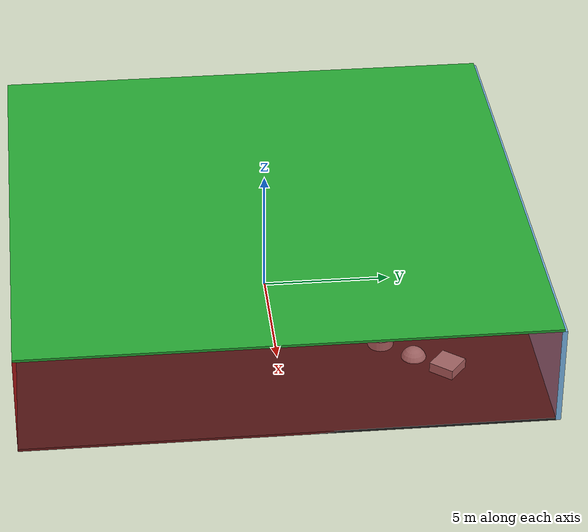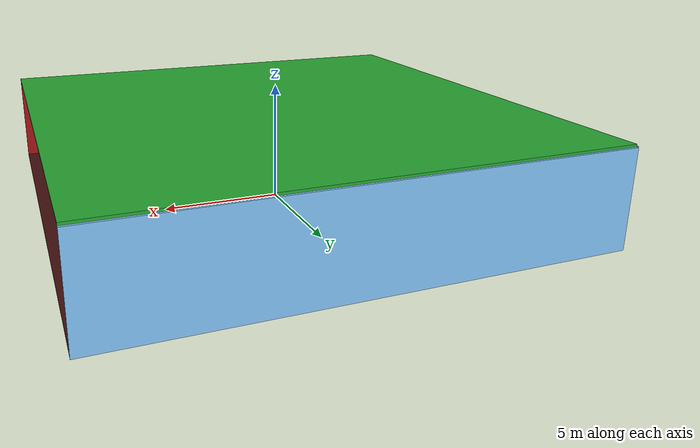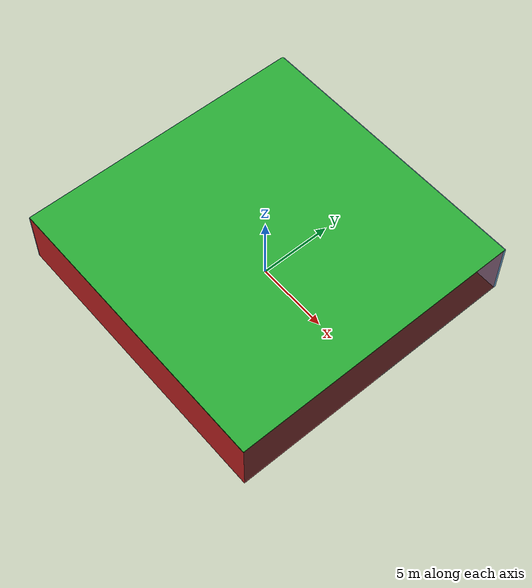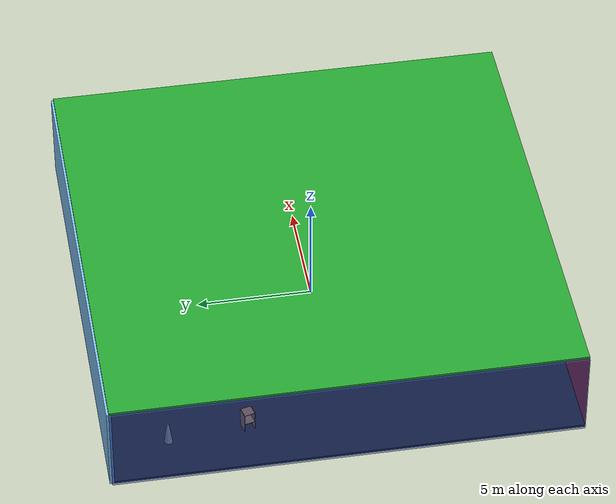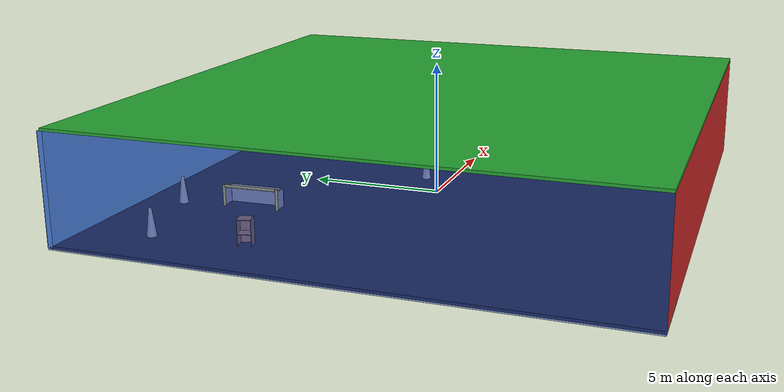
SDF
<sdf version="1.4">
 <world name="default">
  <physics type="ode">
   <max_step_size>0.001</max_step_size>
   <real_time_factor>1</real_time_factor>
   <real_time_update_rate>1000</real_time_update_rate>
   <gravity>0 0 -9.8</gravity>
  </physics>
  <scene><ambient>0.4 0.4 0.4 1</ambient><background>0.7 0.7 0.7 1</background><shadows>1</shadows></scene>
  <model name="Surrounding">
   <static>1</static>
   <link name="Ceiling">
    <collision name="Ceiling_Collision"><geometry><box><size>20 20 0.1</size></box></geometry></collision>
    <visual name="Ceiling_Visual">
     <geometry><box><size>20 20 0.1</size></box></geometry>
     <material>
      <script><uri>file://media/materials/scripts/gazebo.material</uri><name>Gazebo/GreenGlow</name></script>
     </material>
    </visual>
    <pose>0 0 4.05 0 0 0</pose>
   </link>
   <link name="Wall_South">
    <collision name="Wall_South_Collision">
     <geometry><box><size>20 0 4</size></box></geometry>
     <pose>0 0 2 0 -0 0</pose>
    </collision>
    <visual name="Wall_South_Visual">
     <pose>0 0 2 0 -0 0</pose>
     <geometry><box><size>20 0 4</size></box></geometry>
     <material>
      <script><uri>file://media/materials/scripts/gazebo.material</uri><name>Gazebo/RedGlow</name></script>
     </material>
    </visual>
    <velocity_decay><linear>0</linear><angular>0</angular></velocity_decay>
    <pose>0 -10 0 0 -0 0</pose>
   </link>
   <link name="Wall_East">
    <collision name="Wall_21_Collision">
     <geometry><box><size>20 0 4</size></box></geometry>
     <pose>0 0 2 0 -0 0</pose>
    </collision>
    <visual name="Wall_21_Visual">
     <pose>0 0 2 0 -0 0</pose>
     <geometry><box><size>20 0 4</size></box></geometry>
     <material>
      <script><uri>file://media/materials/scripts/gazebo.material</uri><name>Gazebo/RedTransparent</name></script>
     </material>
    </visual>
    <velocity_decay><linear>0</linear><angular>0</angular></velocity_decay>
    <pose>10 0 0 0 -0 1.5708</pose>
   </link>
   <link name="Wall_North">
    <collision name="Wall_22_Collision">
     <geometry><box><size>20 0.2 4</size></box></geometry>
     <pose>0 0 2 0 -0 0</pose>
    </collision>
    <visual name="Wall_22_Visual">
     <pose>0 0 2 0 -0 0</pose>
     <geometry><box><size>20 0.2 4</size></box></geometry>
     <material>
      <script><uri>file://media/materials/scripts/gazebo.material</uri><name>Gazebo/SkyBlue</name></script>
     </material>
    </visual>
    <velocity_decay><linear>0</linear><angular>0</angular></velocity_decay>
    <pose>0 10 0 0 -0 0</pose>
   </link>
   <link name="Wall_West">
    <collision name="Wall_23_Collision">
     <geometry><box><size>20 0.2 4</size></box></geometry>
     <pose>0 0 2 0 -0 0</pose>
    </collision>
    <visual name="Wall_23_Visual">
     <pose>0 0 2 0 -0 0</pose>
     <geometry><box><size>20 0.2 4</size></box></geometry>
     <material>
      <script><uri>file://media/materials/scripts/gazebo.material</uri><name>Gazebo/BlueTransparent</name></script>
     </material>
    </visual>
    <velocity_decay><linear>0</linear><angular>0</angular></velocity_decay>
    <pose>-10 0 0 0 0 -1.5708</pose>
   </link>
   <link name="Ground_link">
    <collision name="collision">
     <pose>0 0 .05 0 -0 0</pose>
     <geometry><box><size>20 20 0.1</size></box></geometry>
    </collision>
    <visual name="visual">
     <pose>0 0 .05 0 -0 0</pose>
     <geometry><box><size>20 20 0.1</size></box></geometry>
     <material>
      <script><uri>file://media/materials/scripts/gazebo.material</uri><name>Gazebo/FlatBlack</name></script>
     </material>
    </visual>
   </link>
   <static>1</static>
  </model>
  <spherical_coordinates>
   <surface_model>EARTH_WGS84</surface_model>
   <latitude_deg>0</latitude_deg>
   <longitude_deg>0</longitude_deg>
   <elevation>0</elevation>
   <heading_deg>0</heading_deg>
  </spherical_coordinates>
  <light name="lightball_0" type="diffuse">
   <diffuse>0.8 0.8 0.8 1</diffuse>
   <specular>0.2 0.2 0.2 1</specular>
   <attenuation>
    <range>100</range>
    <constant>0.7</constant>
    <linear>0.01</linear>
    <quadratic>0.001</quadratic>
   </attenuation>
   <direction>-0.5 0.1 -0.9</direction>
   <pose>-8.72466909802 -1.01356540672 2.9802159721 0 0 0</pose>
  </light>
  <light name="lightball_1" type="diffuse">
   <diffuse>0.8 0.8 0.8 1</diffuse>
   <specular>0.2 0.2 0.2 1</specular>
   <attenuation>
    <range>100</range>
    <constant>0.7</constant>
    <linear>0.01</linear>
    <quadratic>0.001</quadratic>
   </attenuation>
   <direction>-0.5 0.1 -0.9</direction>
   <pose>5.41707465463 -2.99208457097 2.48107268155 0 0 0</pose>
  </light>
  <light name="lightball_2" type="diffuse">
   <diffuse>0.8 0.8 0.8 1</diffuse>
   <specular>0.2 0.2 0.2 1</specular>
   <attenuation>
    <range>100</range>
    <constant>0.7</constant>
    <linear>0.01</linear>
    <quadratic>0.001</quadratic>
   </attenuation>
   <direction>-0.5 0.1 -0.9</direction>
   <pose>-9.04754403407 1.49639384517 3.2552461914 0 0 0</pose>
  </light>
  <light name="lightball_3" type="diffuse">
   <diffuse>0.8 0.8 0.8 1</diffuse>
   <specular>0.2 0.2 0.2 1</specular>
   <attenuation>
    <range>100</range>
    <constant>0.7</constant>
    <linear>0.01</linear>
    <quadratic>0.001</quadratic>
   </attenuation>
   <direction>-0.5 0.1 -0.9</direction>
   <pose>1.83734566447 -3.61755790274 2.7854886572 0 0 0</pose>
  </light>
  <light name="lightball_4" type="diffuse">
   <diffuse>0.8 0.8 0.8 1</diffuse>
   <specular>0.2 0.2 0.2 1</specular>
   <attenuation>
    <range>100</range>
    <constant>0.7</constant>
    <linear>0.01</linear>
    <quadratic>0.001</quadratic>
   </attenuation>
   <direction>-0.5 0.1 -0.9</direction>
   <pose>-6.61725762006 5.12258373312 1.35293393653 0 0 0</pose>
  </light>
  <include><uri>model://cabinet</uri><pose>-7.76982625838 3.97972277935 0 0 0 0.259555456043</pose></include>
  <include>
   <uri>model://construction_cone</uri>
   <pose>-8.07490308733 7.39019574553 0 0 0 1.73705333743</pose>
  </include>
  <include>
   <uri>model://robocup_3Dsim_goal</uri>
   <pose>-4.3426716013 5.68772347908 0 0 0 0.0315388470533</pose>
  </include>
  <include>
   <uri>model://construction_cone</uri>
   <pose>-4.54764872743 8.35553646853 0 0 0 1.2015756521</pose>
  </include>
  <include>
   <uri>model://construction_cone</uri>
   <pose>1.31716823285 0.892435547546 0 0 0 1.79534934271</pose>
  </include>
  <include>
   <uri>model://robocup_3Dsim_goal</uri>
   <pose>3.48102658055 1.52870939959 0 0 0 0.240545969799</pose>
  </include>
  <include>
   <uri>model://textured_shapes</uri>
   <pose>5.64475873473 5.21325382505 0 0 0 2.45656945472</pose>
  </include>
 </world>
</sdf>

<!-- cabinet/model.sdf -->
<sdf version="1.5">
  <model name="cabinet">
    <static>true</static>
    <link name="cabinet_bottom_plate">
      <inertial>
        <pose>0 0 -1 0 0 0</pose>
        <inertia>
          <ixx>2.050000</ixx>
          <ixy>0</ixy>
          <ixz>0</ixz>
          <iyy>2.050000</iyy>
          <iyz>0</iyz>
          <izz>2.050000</izz>
        </inertia>
        <mass>25.000000</mass>
      </inertial>
      <collision name="cabinet_bottom_plate_geom">
        <pose>0 0 0.010000 0 0 0</pose>
        <geometry>
          <box>
            <size>0.450000 0.450000 0.020000</size>
          </box>
        </geometry>
      </collision>
      <visual name="cabinet_bottom_plate_geom_visual">
        <pose>0 0 0.010000 0 0 0</pose>
        <geometry>
          <box>
            <size>0.450000 0.450000 0.020000</size>
          </box>
        </geometry>
        <material>
          <script>
            <uri>model://media/materials/scripts/gazebo.material</uri>
            <name>Gazebo/Wood</name>
          </script>
        </material>
      </visual>
      <collision name="cabinet_bottom_plate_geom_cabinet_back_plate">
        <pose>0.235000 0 0.510000 0 0 0</pose>
        <geometry>
          <box>
            <size>0.020000 0.450000 1.020000</size>
          </box>
        </geometry>
      </collision>
      <visual name="cabinet_bottom_plate_geom_cabinet_back_plate_visual">
        <pose>0.235000 0 0.510000 0 0 0</pose>
        <geometry>
          <box>
            <size>0.020000 0.450000 1.020000</size>
          </box>
        </geometry>
        <material>
          <script>
            <uri>model://media/materials/scripts/gazebo.material</uri>
            <name>Gazebo/Wood</name>
          </script>
        </material>
      </visual>
      <collision name="cabinet_bottom_plate_geom_cabinet_left_plate">
        <pose>0 0.235000 0.510000 0 0 0</pose>
        <geometry>
          <box>
            <size>0.450000 0.020000 1.020000</size>
          </box>
        </geometry>
      </collision>
      <visual name="cabinet_bottom_plate_geom_cabinet_left_plate_visual">
        <pose>0 0.235000 0.510000 0 0 0</pose>
        <geometry>
          <box>
            <size>0.450000 0.020000 1.020000</size>
          </box>
        </geometry>
        <material>
          <script>
            <uri>model://media/materials/scripts/gazebo.material</uri>
            <name>Gazebo/Wood</name>
          </script>
        </material>
      </visual>
      <collision name="cabinet_bottom_plate_geom_cabinet_middle_plate">
        <pose>0 0 0.510000 0 0 0</pose>
        <geometry>
          <box>
            <size>0.450000 0.450000 0.020000</size>
          </box>
        </geometry>
      </collision>
      <visual name="cabinet_bottom_plate_geom_cabinet_middle_plate_visual">
        <pose>0 0 0.510000 0 0 0</pose>
        <geometry>
          <box>
            <size>0.450000 0.450000 0.020000</size>
          </box>
        </geometry>
        <material>
          <script>
            <uri>model://media/materials/scripts/gazebo.material</uri>
            <name>Gazebo/Wood</name>
          </script>
        </material>
      </visual>
      <collision name="cabinet_bottom_plate_geom_cabinet_right_plate">
        <pose>0 -0.235000 0.510000 0 0 0</pose>
        <geometry>
          <box>
            <size>0.450000 0.020000 1.020000</size>
          </box>
        </geometry>
      </collision>
      <visual name="cabinet_bottom_plate_geom_cabinet_right_plate_visual">
        <pose>0 -0.235000 0.510000 0 0 0</pose>
        <geometry>
          <box>
            <size>0.450000 0.020000 1.020000</size>
          </box>
        </geometry>
        <material>
          <script>
            <uri>model://media/materials/scripts/gazebo.material</uri>
            <name>Gazebo/Wood</name>
          </script>
        </material>
      </visual>
      <collision name="cabinet_bottom_plate_geom_cabinet_top_plate">
        <pose>0 0 1.010000 0 0 0</pose>
        <geometry>
          <box>
            <size>0.450000 0.450000 0.020000</size>
          </box>
        </geometry>
      </collision>
      <visual name="cabinet_bottom_plate_geom_cabinet_top_plate_visual">
        <pose>0 0 1.010000 0 0 0</pose>
        <geometry>
          <box>
            <size>0.450000 0.450000 0.020000</size>
          </box>
        </geometry>
        <material>
          <script>
            <uri>model://media/materials/scripts/gazebo.material</uri>
            <name>Gazebo/Wood</name>
          </script>
        </material>
      </visual>
    </link>
  </model>
</sdf>

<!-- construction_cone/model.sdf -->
<sdf version="1.5">
  <model name="Construction Cone">
    <link name="link">
      <collision name="collision">
        <geometry>
          <mesh>
            <scale>10 10 10</scale>
            <uri>file://isr-testbed/construction_cone/meshes/construction_cone.dae</uri>
          </mesh>
        </geometry>
      </collision>
      <visual name="visual">
        <geometry>
          <mesh>
            <scale>10 10 10</scale>
            <uri>file://isr-testbed/construction_cone/meshes/construction_cone.dae</uri>
          </mesh>
        </geometry>
      </visual>
    </link>
  </model>
</sdf>

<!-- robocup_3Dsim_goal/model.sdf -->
<sdf version="1.5">
  <model name="robocup_3d_goal">
    <static>true</static>
    <link name="left_post">
      <pose>0 1.05 0.45 0 0 0</pose>
      <collision name="collision">
        <geometry>
          <cylinder>
            <radius>0.05</radius>
            <length>0.9</length>
          </cylinder>
        </geometry>
      </collision>
      <visual name="visual">
        <geometry>
          <cylinder>
            <radius>0.05</radius>
            <length>0.9</length>
          </cylinder>
        </geometry>
        <material>
          <script>
            <uri>file://media/materials/scripts/gazebo.material</uri>
            <name>Gazebo/ZincYellow</name>
          </script>
        </material>
      </visual>
    </link>
    <link name="left_support_horiz_lower">
      <pose>0.30 1.05 0.01 0 0 0</pose>
      <collision name="collision">
        <geometry>
          <box>
            <size>0.50 0.02 0.02</size>
          </box>
        </geometry>
      </collision>
      <visual name="visual">
        <geometry>
          <box>
            <size>0.50 0.02 0.02</size>
          </box>
        </geometry>
        <material>
          <script>
            <uri>file://media/materials/scripts/gazebo.material</uri>
            <name>Gazebo/White</name>
          </script>
        </material>
      </visual>
    </link>
    <link name="left_support_horiz_upper">
      <pose>0.30 1.05 0.79 0 0 0</pose>
      <collision name="collision">
        <geometry>
          <box>
            <size>0.50 0.02 0.02</size>
          </box>
        </geometry>
      </collision>
      <visual name="visual">
        <geometry>
          <box>
            <size>0.50 0.02 0.02</size>
          </box>
        </geometry>
        <material>
          <script>
            <uri>file://media/materials/scripts/gazebo.material</uri>
            <name>Gazebo/White</name>
          </script>
        </material>
      </visual>
    </link>
    <link name="left_support_vertical">
      <pose>0.56 1.05 0.4 0 1.5708 0</pose>
      <collision name="collision">
        <geometry>
          <box>
            <size>0.80 0.02 0.02</size>
          </box>
        </geometry>
      </collision>
      <visual name="visual">
        <geometry>
          <box>
            <size>0.80 0.02 0.02</size>
          </box>
        </geometry>
        <material>
          <script>
            <uri>file://media/materials/scripts/gazebo.material</uri>
            <name>Gazebo/White</name>
          </script>
        </material>
      </visual>
    </link>
    <link name="right_support_horiz_lower">
      <pose>0.30 -1.05 0.01 0 0 0</pose>
      <collision name="collision">
        <geometry>
          <box>
            <size>0.50 0.02 0.02</size>
          </box>
        </geometry>
      </collision>
      <visual name="visual">
        <geometry>
          <box>
            <size>0.50 0.02 0.02</size>
          </box>
        </geometry>
        <material>
          <script>
            <uri>file://media/materials/scripts/gazebo.material</uri>
            <name>Gazebo/White</name>
          </script>
        </material>
      </visual>
    </link>
    <link name="right_support_horiz_upper">
      <pose>0.30 -1.05 0.79 0 0 0</pose>
      <collision name="collision">
        <geometry>
          <box>
            <size>0.50 0.02 0.02</size>
          </box>
        </geometry>
      </collision>
      <visual name="visual">
        <geometry>
          <box>
            <size>0.50 0.02 0.02</size>
          </box>
        </geometry>
        <material>
          <script>
            <uri>file://media/materials/scripts/gazebo.material</uri>
            <name>Gazebo/White</name>
          </script>
        </material>
      </visual>
    </link>
    <link name="right_support_vertical">
      <pose>0.56 -1.05 0.4 0 1.5708 0</pose>
      <collision name="collision">
        <geometry>
          <box>
            <size>0.80 0.02 0.02</size>
          </box>
        </geometry>
      </collision>
      <visual name="visual">
        <geometry>
          <box>
            <size>0.80 0.02 0.02</size>
          </box>
        </geometry>
        <material>
          <script>
            <uri>file://media/materials/scripts/gazebo.material</uri>
            <name>Gazebo/White</name>
          </script>
        </material>
      </visual>
    </link>
    <link name="center_support_horiz_lower">
      <pose>0.56 0 0.01 0 1.5708 0</pose>
      <collision name="collision">
        <geometry>
          <box>
            <size>0.02 2.08 0.02</size>
          </box>
        </geometry>
      </collision>
      <visual name="visual">
        <geometry>
          <box>
            <size>0.02 2.08 0.02</size>
          </box>
        </geometry>
        <material>
          <script>
            <uri>file://media/materials/scripts/gazebo.material</uri>
            <name>Gazebo/White</name>
          </script>
        </material>
      </visual>
    </link>
    <link name="center_support_horiz_upper">
      <pose>0.56 0 0.79 0 1.5708 0</pose>
      <collision name="collision">
        <geometry>
          <box>
            <size>0.02 2.08 0.02</size>
          </box>
        </geometry>
      </collision>
      <visual name="visual">
        <geometry>
          <box>
            <size>0.02 2.08 0.02</size>
          </box>
        </geometry>
        <material>
          <script>
            <uri>file://media/materials/scripts/gazebo.material</uri>
            <name>Gazebo/White</name>
          </script>
        </material>
      </visual>
    </link>
    <link name="right_post">
      <pose>0 -1.05 0.45 0 0 0</pose>
      <collision name="collision">
        <geometry>
          <cylinder>
            <radius>0.05</radius>
            <length>0.9</length>
          </cylinder>
        </geometry>
      </collision>
      <visual name="visual">
        <geometry>
          <cylinder>
            <radius>0.05</radius>
            <length>0.9</length>
          </cylinder>
        </geometry>
        <material>
          <script>
            <uri>file://media/materials/scripts/gazebo.material</uri>
            <name>Gazebo/ZincYellow</name>
          </script>
        </material>
      </visual>
    </link>
    <link name="crossbar">
      <pose>0 0 0.85 1.57 1.57 0</pose>
      <collision name="collision">
        <geometry>
          <cylinder>
            <radius>0.05</radius>
            <length>2.0</length>
          </cylinder>
        </geometry>
      </collision>
      <visual name="visual">
        <geometry>
          <cylinder>
            <radius>0.05</radius>
            <length>2.0</length>
          </cylinder>
        </geometry>
        <material>
          <script>
            <uri>file://media/materials/scripts/gazebo.material</uri>
            <name>Gazebo/ZincYellow</name>
          </script>
        </material>
      </visual>
    </link>
    <link name="center_net">
      <pose>0.56 0 0.40 0 0 0</pose>
      <collision name="collision">
        <geometry>
          <box>
            <size>0.01 2.1 0.80</size>
          </box>
        </geometry>
      </collision>
      <visual name="visual">
        <geometry>
          <box>
            <size>0.01 2.1 0.80</size>
          </box>
        </geometry>
        <material>
          <script>
            <uri>model://../model_source/models/robocup09_spl_field/materials/scripts/</uri>
            <uri>model://../model_source/models/robocup09_spl_field/materials/textures/</uri>
            <name>RoboCup/Net</name>
          </script>
        </material>
      </visual>
    </link>
    <link name="left_net">
      <pose>0.30 1.05 0.40 0 0 0</pose>
      <collision name="collision">
        <geometry>
          <box>
            <size>0.50 0.01 0.76</size>
          </box>
        </geometry>
      </collision>
      <visual name="visual">
        <geometry>
          <box>
            <size>0.50 0.01 0.76</size>
          </box>
        </geometry>
        <material>
          <script>
            <uri>model://../model_source/models/robocup09_spl_field/materials/scripts/</uri>
            <uri>model://../model_source/models/robocup09_spl_field/materials/textures/</uri>
            <name>RoboCup/Net</name>
          </script>
        </material>
      </visual>
    </link>
    <link name="right_net">
      <pose>0.30 -1.05 0.40 0 0 0</pose>
      <collision name="collision">
        <geometry>
          <box>
            <size>0.50 0.01 0.76</size>
          </box>
        </geometry>
      </collision>
      <visual name="visual">
        <geometry>
          <box>
            <size>0.50 0.01 0.76</size>
          </box>
        </geometry>
        <material>
          <script>
            <uri>model://../model_source/models/robocup09_spl_field/materials/scripts/</uri>
            <uri>model://../model_source/models/robocup09_spl_field/materials/textures/</uri>
            <name>RoboCup/Net</name>
          </script>
        </material>
      </visual>
    </link>
  </model>
</sdf>

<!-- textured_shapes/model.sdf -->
<sdf version="1.6">
  <model name="textured_shapes">
    <pose>0 0 0.5 0 0 0</pose>
    <link name="box">
      <pose>0 -1.5 0 0 0 0</pose>
      <collision name="collision">
        <geometry>
          <box>
            <size>1 1 1</size>
          </box>
        </geometry>
      </collision>
      <visual name="visual">
        <geometry>
          <box>
            <size>1 1 1</size>
          </box>
        </geometry>
        <material>
          <script>
            <uri>model://../model_source/models/textured_shapes/materials/scripts</uri>
            <uri>model://../model_source/models/textured_shapes/materials/textures</uri>
            <name>TexturedShape/Squares</name>
          </script>
        </material>
      </visual>
    </link>
    <link name="sphere">
      <collision name="collision">
        <geometry>
          <sphere>
            <radius>0.5</radius>
          </sphere>
        </geometry>
      </collision>
      <visual name="visual">
        <geometry>
          <sphere>
            <radius>0.5</radius>
          </sphere>
        </geometry>
        <material>
          <script>
            <uri>model://../model_source/models/textured_shapes/materials/scripts</uri>
            <uri>model://../model_source/models/textured_shapes/materials/textures</uri>
            <name>TexturedShape/Squares</name>
          </script>
        </material>
      </visual>
    </link>
    <link name="cylinder">
      <pose>0 1.5 0 0 0 0</pose>
      <collision name="collision">
        <geometry>
          <cylinder>
            <radius>0.5</radius>
            <length>1</length>
          </cylinder>
        </geometry>
      </collision>
      <visual name="visual">
        <geometry>
          <cylinder>
            <radius>0.5</radius>
            <length>1</length>
          </cylinder>
        </geometry>
        <material>
          <script>
            <uri>model://../model_source/models/textured_shapes/materials/scripts</uri>
            <uri>model://../model_source/models/textured_shapes/materials/textures</uri>
            <name>TexturedShape/Squares</name>
          </script>
        </material>
      </visual>
    </link>
  </model>
</sdf>
